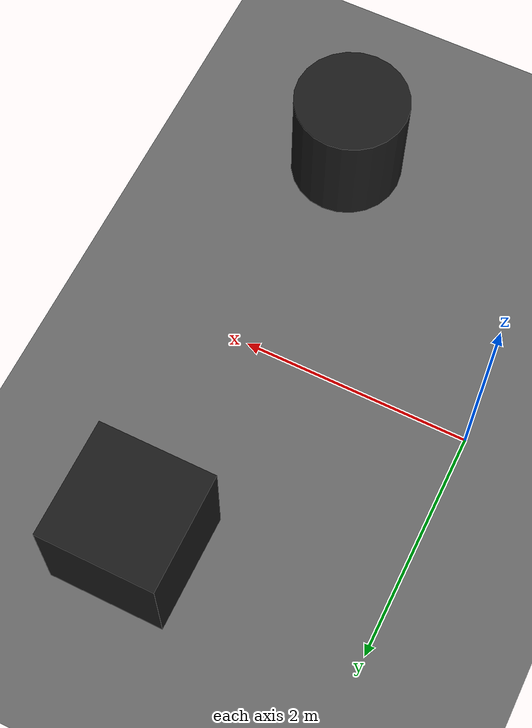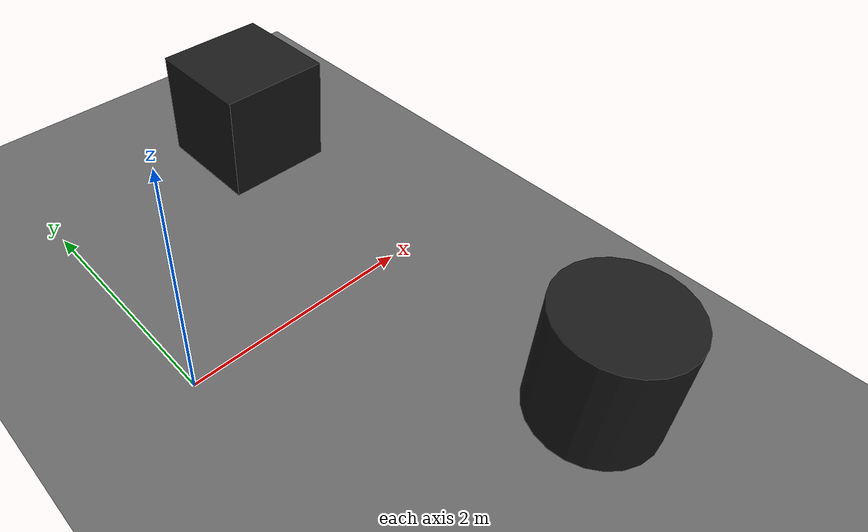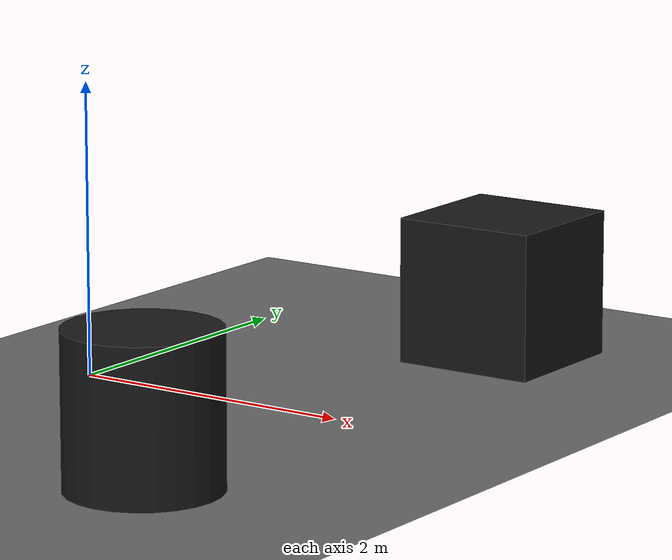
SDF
<?xml version="1.0" ?>
<sdf version="1.8">
  <world name="default">

    <plugin filename="gz-sim-physics-system"           name="gz::sim::systems::Physics"/>
    <plugin filename="gz-sim-user-commands-system"     name="gz::sim::systems::UserCommands"/>
    <plugin filename="gz-sim-scene-broadcaster-system" name="gz::sim::systems::SceneBroadcaster"/>
    <plugin filename="gz-sim-contact-system"           name="gz::sim::systems::Contact"/>
    <plugin filename="gz-sim-sensors-system"           name="gz::sim::systems::Sensors">
      <render_engine>ogre2</render_engine>
    </plugin>

    <plugin filename="ignition-gazebo-buoyancy-system" name="ignition::gazebo::systems::Buoyancy">
      <uniform_fluid_density>1000</uniform_fluid_density>
    </plugin>

    <plugin filename="gz-sim-apply-link-wrench-system" name="gz::sim::systems::ApplyLinkWrench">
      <topic>/cmd_ballast_in</topic>
      <link_name>perri_auv/base_link</link_name>
    </plugin>

    <plugin filename="gz-sim-imu-system"
            name="gz::sim::systems::Imu">
    </plugin>

    <light type="directional" name="sun">
      <cast_shadows>true</cast_shadows>
      <pose>0 0 10 0 0 0</pose>
      <diffuse>0.8 0.8 0.8 1</diffuse>
      <direction>-0.5 0.1 -0.9</direction>
    </light>

    <model name="ground_plane">
      <static>true</static>
      <link name="link">
        <collision name="collision">
          <geometry><plane><normal>0 0 1</normal><size>100 100</size></plane></geometry>
        </collision>
        <visual name="visual">
          <geometry><plane><normal>0 0 1</normal><size>100 100</size></plane></geometry>
          <material><diffuse>0.4 0.4 0.4 1</diffuse></material>
        </visual>
      </link>
    </model>

    <model name='obstacles'>
      <static>true</static>
      <link name='obstacles_body'>

        <visual name="box_visual">
          <pose>2 2 0.5 0 0 0</pose>
          <geometry>
            <box>
              <size>1 1 1</size>
            </box>
          </geometry>
          <material>
            <diffuse>0.1 0.1 0.1 1</diffuse>
          </material>
        </visual>

        <collision name="box_collision">
          <pose>2 2 0.5 0 0 0</pose>
          <geometry>
            <box>
              <size>1 1 1</size>
            </box>
          </geometry>
        </collision>

        <visual name="cylinder_visual">
          <pose>2 -2 0.5 0 0 0</pose>
          <geometry>
            <cylinder>
              <radius>0.5</radius>
              <length>1</length>
            </cylinder>
          </geometry>
          <material>
            <diffuse>0.1 0.1 0.1 1</diffuse>
          </material>
        </visual>

        <collision name="cylinder_collision">
          <pose>2 -2 0.5 0 0 0</pose>
          <geometry>
            <cylinder>
              <radius>0.5</radius>
              <length>1</length>
            </cylinder>
          </geometry>
        </collision>

      </link>
    </model>
  </world>
</sdf>
